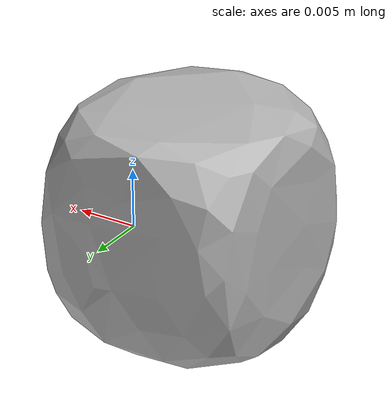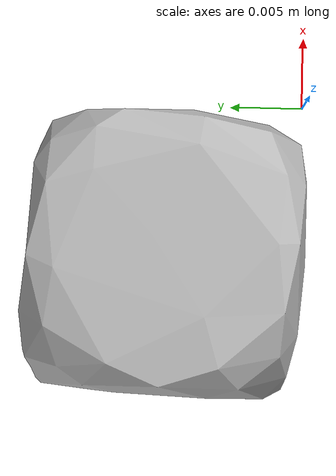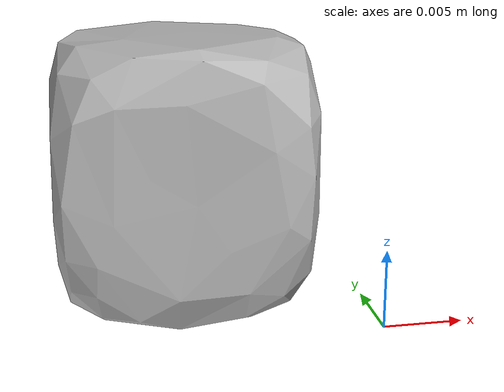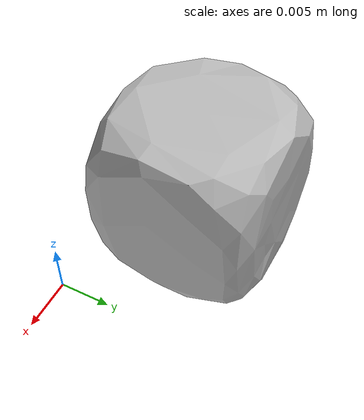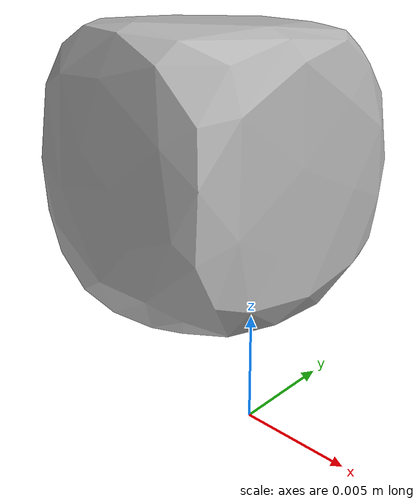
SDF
<?xml version='1.0'?>
<sdf version="1.4">
  <model name="062_dice">
    <static>false</static>
    <link name="link">
      <inertial>
        <pose>-0.01122473006561931 0.009193421351383985 0.008415601214903753 -3.107213501302882 -0.004619173514300538 1.316396016254344</pose>
        <mass>0.00043791240057642364</mass>
        <inertia>
          <ixx>1.9251365017925102e-08</ixx>
          <ixy>-3.366024483321365e-24</ixy>
          <ixz>-2.029523078933226e-24</ixz>
          <iyy>1.91396029675606e-08</iyy>
          <iyz>-5.329815965841953e-25</iyz>
          <izz>1.8198483992494567e-08</izz>
        </inertia>
      </inertial>
      <collision name="collision">
        <geometry>
          <mesh>
            <!-- Use a downsampled mesh for collisions -->
            <uri>model:///062_dice/062_dice_250_collision.stl</uri>
	        </mesh>
        </geometry>
        <surface>
      </surface>
      </collision>
      <visual name="visual">
        <geometry>
          <mesh>
            <uri>model:///062_dice/textured.obj</uri>
	        </mesh>
        </geometry>
        <material>
          <script>
            <uri>model:///062_dice/062_dice.material</uri>
            <name>062_dice</name>
          </script>
        </material>
      </visual>
    </link>
  </model>
</sdf>
